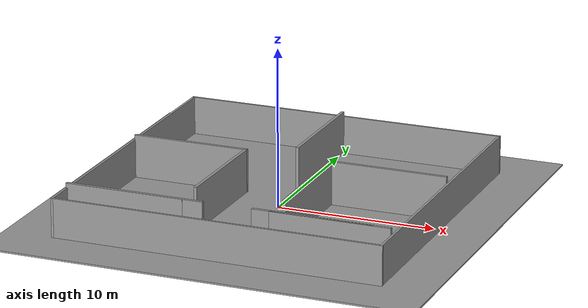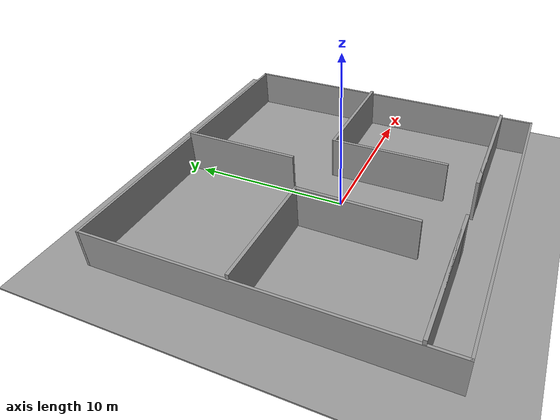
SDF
<sdf version="1.6">
 <world name="default">
  <light name="sun" type="directional">
   <pose>0 0 10 0 -0 0</pose>
   <diffuse>0.8 0.8 0.8 1</diffuse>
   <specular>0.1 0.1 0.1 1</specular>
   <attenuation>
    <range>1000</range>
    <constant>0.9</constant>
    <linear>0.01</linear>
    <quadratic>0.001</quadratic>
   </attenuation>
   <direction>-0.5 0.5 -1</direction>
  </light>
  <model name="ground_plane">
   <static>1</static>
   <link name="link">
    <collision name="collision">
     <geometry><plane><normal>0 0 1</normal><size>100 100</size></plane></geometry>
     <surface><friction><ode><mu>100</mu><mu2>50</mu2></ode></friction></surface>
    </collision>
    <visual name="visual">
     <cast_shadows>0</cast_shadows>
     <geometry><plane><normal>0 0 1</normal><size>100 100</size></plane></geometry>
     <material>
      <script><uri>file://media/materials/scripts/gazebo.material</uri><name>Gazebo/Grey</name></script>
     </material>
    </visual>
   </link>
  </model>
  <gravity>0 0 -9.8</gravity>
  <magnetic_field>6e-06 2.3e-05 -4.2e-05</magnetic_field>
  <atmosphere type="adiabatic"/>
  <physics name="default_physics" default="0" type="ode">
   <max_step_size>0.001</max_step_size>
   <real_time_factor>1</real_time_factor>
   <real_time_update_rate>1000</real_time_update_rate>
  </physics>
  <scene><ambient>0.4 0.4 0.4 1</ambient><background>0.7 0.7 0.7 1</background><shadows>1</shadows></scene>
  <spherical_coordinates>
   <surface_model>EARTH_WGS84</surface_model>
   <latitude_deg>0</latitude_deg>
   <longitude_deg>0</longitude_deg>
   <elevation>0</elevation>
   <heading_deg>0</heading_deg>
  </spherical_coordinates>
  <model name="wall_room">
   <pose>0.0655 0.411387 0 0 -0 0</pose>
   <link name="Wall_21">
    <collision name="Wall_21_Collision">
     <geometry><box><size>20.75 0.15 2.5</size></box></geometry>
     <pose>0 0 1.25 0 -0 0</pose>
    </collision>
    <visual name="Wall_21_Visual">
     <pose>0 0 1.25 0 -0 0</pose>
     <geometry><box><size>20.75 0.15 2.5</size></box></geometry>
     <material>
      <script><uri>file://media/materials/scripts/gazebo.material</uri><name>Gazebo/Grey</name></script>
      <ambient>1 1 1 1</ambient>
     </material>
    </visual>
    <pose>10.2987 0.001324 0 0 -0 1.5708</pose>
   </link>
   <link name="Wall_22">
    <collision name="Wall_22_Collision">
     <geometry><box><size>20.75 0.15 2.5</size></box></geometry>
     <pose>0 0 1.25 0 -0 0</pose>
    </collision>
    <visual name="Wall_22_Visual">
     <pose>0 0 1.25 0 -0 0</pose>
     <geometry><box><size>20.75 0.15 2.5</size></box></geometry>
     <material>
      <script><uri>file://media/materials/scripts/gazebo.material</uri><name>Gazebo/Grey</name></script>
      <ambient>1 1 1 1</ambient>
     </material>
    </visual>
    <pose>-0.001323 10.3013 0 0 -0 3.14159</pose>
   </link>
   <link name="Wall_24">
    <collision name="Wall_24_Collision">
     <geometry><box><size>20.75 0.15 2.5</size></box></geometry>
     <pose>0 0 1.25 0 -0 0</pose>
    </collision>
    <visual name="Wall_24_Visual">
     <pose>0 0 1.25 0 -0 0</pose>
     <geometry><box><size>20.75 0.15 2.5</size></box></geometry>
     <material>
      <script><uri>file://media/materials/scripts/gazebo.material</uri><name>Gazebo/Grey</name></script>
      <ambient>1 1 1 1</ambient>
     </material>
    </visual>
    <pose>-10.2987 -0.001323 0 0 0 -1.5708</pose>
   </link>
   <link name="Wall_27">
    <collision name="Wall_27_Collision">
     <geometry><box><size>20.75 0.15 2.5</size></box></geometry>
     <pose>0 0 1.25 0 -0 0</pose>
    </collision>
    <visual name="Wall_27_Visual">
     <pose>0 0 1.25 0 -0 0</pose>
     <geometry><box><size>20.75 0.15 2.5</size></box></geometry>
     <material>
      <script><uri>file://media/materials/scripts/gazebo.material</uri><name>Gazebo/Grey</name></script>
      <ambient>1 1 1 1</ambient>
     </material>
    </visual>
    <pose>0.001324 -10.3013 0 0 -0 0</pose>
   </link>
   <static>1</static>
  </model>
  <model name="ground_plane_0">
   <static>1</static>
   <link name="link">
    <collision name="collision">
     <geometry><plane><normal>0 0 1</normal><size>100 100</size></plane></geometry>
     <surface><friction><ode><mu>100</mu><mu2>50</mu2></ode></friction></surface>
    </collision>
    <visual name="visual">
     <cast_shadows>0</cast_shadows>
     <geometry><plane><normal>0 0 1</normal><size>100 100</size></plane></geometry>
     <material>
      <script><uri>file://media/materials/scripts/gazebo.material</uri><name>Gazebo/Grey</name></script>
     </material>
    </visual>
   </link>
   <pose>-7.33918 4.40208 0 0 -0 0</pose>
  </model>
  <model name="grey_wall">
   <static>1</static>
   <link name="link">
    <pose>0 0 1.4 0 -0 0</pose>
    <collision name="collision"><geometry><box><size>7.5 0.2 2.8</size></box></geometry></collision>
    <visual name="visual">
     <cast_shadows>0</cast_shadows>
     <geometry><box><size>7.5 0.2 2.8</size></box></geometry>
     <material>
      <script>
       <uri>model://grey_wall/materials/scripts</uri>
       <uri>model://grey_wall/materials/textures</uri>
       <name>vrc/grey_wall</name>
      </script>
     </material>
    </visual>
   </link>
   <pose>-6.45638 1.66874 0 0 -0 0</pose>
  </model>
  <model name="grey_wall_0">
   <static>1</static>
   <link name="link">
    <pose>0 0 1.4 0 -0 0</pose>
    <collision name="collision"><geometry><box><size>7.5 0.2 2.8</size></box></geometry></collision>
    <visual name="visual">
     <cast_shadows>0</cast_shadows>
     <geometry><box><size>7.5 0.2 2.8</size></box></geometry>
     <material>
      <script>
       <uri>model://grey_wall/materials/scripts</uri>
       <uri>model://grey_wall/materials/textures</uri>
       <name>vrc/grey_wall</name>
      </script>
     </material>
    </visual>
   </link>
   <pose>-0.016188 6.91553 0 0 0 -1.57675</pose>
  </model>
  <model name="grey_wall_1">
   <static>1</static>
   <link name="link">
    <pose>0 0 1.4 0 -0 0</pose>
    <collision name="collision"><geometry><box><size>7.5 0.2 2.8</size></box></geometry></collision>
    <visual name="visual">
     <cast_shadows>0</cast_shadows>
     <geometry><box><size>7.5 0.2 2.8</size></box></geometry>
     <material>
      <script>
       <uri>model://grey_wall/materials/scripts</uri>
       <uri>model://grey_wall/materials/textures</uri>
       <name>vrc/grey_wall</name>
      </script>
     </material>
    </visual>
   </link>
   <pose>6.42538 1.60402 0 0 -0 0</pose>
  </model>
  <model name="grey_wall_2">
   <static>1</static>
   <link name="link">
    <pose>0 0 1.4 0 -0 0</pose>
    <collision name="collision"><geometry><box><size>7.5 0.2 2.8</size></box></geometry></collision>
    <visual name="visual">
     <cast_shadows>0</cast_shadows>
     <geometry><box><size>7.5 0.2 2.8</size></box></geometry>
     <material>
      <script>
       <uri>model://grey_wall/materials/scripts</uri>
       <uri>model://grey_wall/materials/textures</uri>
       <name>vrc/grey_wall</name>
      </script>
     </material>
    </visual>
   </link>
   <pose>2.77733 -2.09567 -0.00475 0 0 -1.57005</pose>
  </model>
  <model name="grey_wall_3">
   <static>1</static>
   <link name="link">
    <pose>0 0 1.4 0 -0 0</pose>
    <collision name="collision"><geometry><box><size>7.5 0.2 2.8</size></box></geometry></collision>
    <visual name="visual">
     <cast_shadows>0</cast_shadows>
     <geometry><box><size>7.5 0.2 2.8</size></box></geometry>
     <material>
      <script>
       <uri>model://grey_wall/materials/scripts</uri>
       <uri>model://grey_wall/materials/textures</uri>
       <name>vrc/grey_wall</name>
      </script>
     </material>
    </visual>
   </link>
   <pose>-2.86395 -2.02903 0 0 -0 1.5578</pose>
  </model>
  <model name="grey_wall_5">
   <static>1</static>
   <link name="link">
    <pose>0 0 1.4 0 -0 0</pose>
    <collision name="collision"><geometry><box><size>7.5 0.2 2.8</size></box></geometry></collision>
    <visual name="visual">
     <cast_shadows>0</cast_shadows>
     <geometry><box><size>7.5 0.2 2.8</size></box></geometry>
     <material>
      <script>
       <uri>model://grey_wall/materials/scripts</uri>
       <uri>model://grey_wall/materials/textures</uri>
       <name>vrc/grey_wall</name>
      </script>
     </material>
    </visual>
   </link>
   <pose>-6.51734 -7.89646 0 0 -0 0</pose>
  </model>
  <model name="grey_wall_6">
   <static>1</static>
   <link name="link">
    <pose>0 0 1.4 0 -0 0</pose>
    <collision name="collision"><geometry><box><size>7.5 0.2 2.8</size></box></geometry></collision>
    <visual name="visual">
     <cast_shadows>0</cast_shadows>
     <geometry><box><size>7.5 0.2 2.8</size></box></geometry>
     <material>
      <script>
       <uri>model://grey_wall/materials/scripts</uri>
       <uri>model://grey_wall/materials/textures</uri>
       <name>vrc/grey_wall</name>
      </script>
     </material>
    </visual>
   </link>
   <pose>-5.22806 -7.88524 0 0 -0 0</pose>
  </model>
  <model name="grey_wall_7">
   <static>1</static>
   <link name="link">
    <pose>0 0 1.4 0 -0 0</pose>
    <collision name="collision"><geometry><box><size>7.5 0.2 2.8</size></box></geometry></collision>
    <visual name="visual">
     <cast_shadows>0</cast_shadows>
     <geometry><box><size>7.5 0.2 2.8</size></box></geometry>
     <material>
      <script>
       <uri>model://grey_wall/materials/scripts</uri>
       <uri>model://grey_wall/materials/textures</uri>
       <name>vrc/grey_wall</name>
      </script>
     </material>
    </visual>
   </link>
   <pose>6.43798 -7.84937 0 0 -0 0</pose>
  </model>
  <model name="grey_wall_8">
   <static>1</static>
   <link name="link">
    <pose>0 0 1.4 0 -0 0</pose>
    <collision name="collision"><geometry><box><size>7.5 0.2 2.8</size></box></geometry></collision>
    <visual name="visual">
     <cast_shadows>0</cast_shadows>
     <geometry><box><size>7.5 0.2 2.8</size></box></geometry>
     <material>
      <script>
       <uri>model://grey_wall/materials/scripts</uri>
       <uri>model://grey_wall/materials/textures</uri>
       <name>vrc/grey_wall</name>
      </script>
     </material>
    </visual>
   </link>
   <pose>5.33483 -7.83879 0 0 -0 0</pose>
  </model>
 </world>
</sdf>
